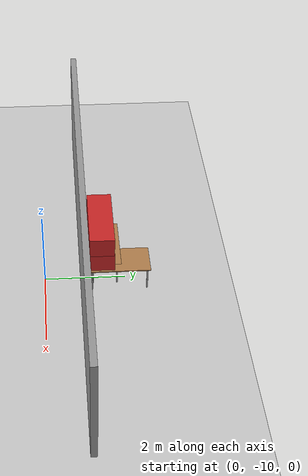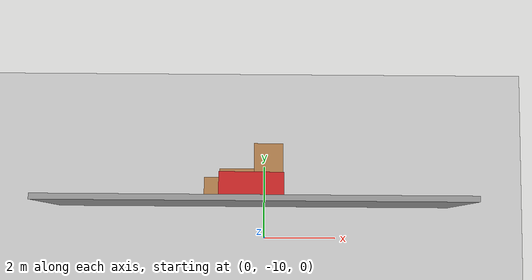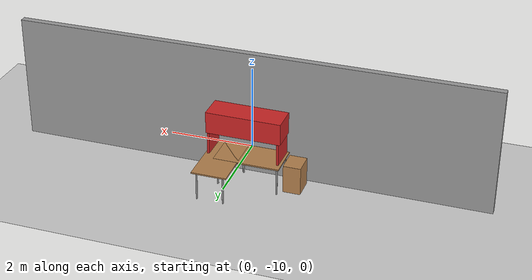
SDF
<sdf version="1.6">
 <world name="default">
  <model name="ground_plane">
   <static>1</static>
   <link name="link">
    <collision name="collision">
     <geometry><plane><normal>0 0 1</normal><size>100 100</size></plane></geometry>
     <surface>
      <contact><collide_bitmask>65535</collide_bitmask></contact>
      <friction><ode><mu>100</mu><mu2>50</mu2></ode></friction>
     </surface>
    </collision>
    <visual name="visual">
     <cast_shadows>0</cast_shadows>
     <geometry><plane><normal>0 0 1</normal><size>100 100</size></plane></geometry>
     <material>
      <script><uri>file://media/materials/scripts/gazebo.material</uri><name>Gazebo/Grey</name></script>
     </material>
    </visual>
   </link>
  </model>
  <model name="nrsl">
   <link name="Wall_6">
    <pose>0 -5.94 0 0 -0 0</pose>
    <visual name="Wall_6_Visual">
     <pose>0 0 1.45 0 -0 0</pose>
     <geometry><box><size>10.97 0.15 2.9</size></box></geometry>
     <material>
      <script><uri>file://media/materials/scripts/gazebo.material</uri><name>Gazebo/Grey</name></script>
      <ambient>1 1 1 1</ambient>
     </material>
     <meta><layer>0</layer></meta>
    </visual>
    <collision name="Wall_6_Collision">
     <pose>0 0 1.45 0 -0 0</pose>
     <geometry><box><size>10.97 0.15 2.9</size></box></geometry>
     <surface>
      <friction>
       <ode><mu>1</mu><mu2>1</mu2><fdir1>0 0 0</fdir1><slip1>0</slip1><slip2>0</slip2></ode>
       <torsional>
        <coefficient>1</coefficient>
        <patch_radius>0</patch_radius>
        <surface_radius>0</surface_radius>
        <use_patch_radius>1</use_patch_radius>
        <ode><slip>0</slip></ode>
       </torsional>
      </friction>
      <bounce><restitution_coefficient>0</restitution_coefficient><threshold>1e+06</threshold></bounce>
      <contact>
       <collide_without_contact>0</collide_without_contact>
       <collide_without_contact_bitmask>1</collide_without_contact_bitmask>
       <collide_bitmask>1</collide_bitmask>
       <ode>
        <soft_cfm>0</soft_cfm>
        <soft_erp>0.2</soft_erp>
        <kp>1e+13</kp>
        <kd>1</kd>
        <max_vel>0.01</max_vel>
        <min_depth>0</min_depth>
       </ode>
       <bullet>
        <split_impulse>1</split_impulse>
        <split_impulse_penetration_threshold>-0.01</split_impulse_penetration_threshold>
        <soft_cfm>0</soft_cfm>
        <soft_erp>0.2</soft_erp>
        <kp>1e+13</kp>
        <kd>1</kd>
       </bullet>
      </contact>
     </surface>
    </collision>
   </link>
   <static>1</static>
   <pose>-0.282297 -3.10716 0 0 -0 0</pose>
  </model>
  <model name="table_7">
   <link name="link">
    <visual name="visual1">
     <pose>0 0 0.67 0 -0 0</pose>
     <geometry><box><size>1.5 0.8 0.03</size></box></geometry>
     <material>
      <script><uri>file://media/materials/scripts/gazebo.material</uri><name>Gazebo/Wood</name></script>
     </material>
    </visual>
    <visual name="front_left_leg">
     <pose>0.68 0.3 0.335 0 -0 0</pose>
     <geometry><cylinder><radius>0.02</radius><length>0.67</length></cylinder></geometry>
     <material>
      <script><uri>file://media/materials/scripts/gazebo.material</uri><name>Gazebo/Grey</name></script>
     </material>
    </visual>
    <visual name="front_right_leg">
     <pose>0.68 -0.3 0.335 0 -0 0</pose>
     <geometry><cylinder><radius>0.02</radius><length>0.67</length></cylinder></geometry>
     <material>
      <script><uri>file://media/materials/scripts/gazebo.material</uri><name>Gazebo/Grey</name></script>
     </material>
    </visual>
    <visual name="back_right_leg">
     <pose>-0.68 -0.3 0.335 0 -0 0</pose>
     <geometry><cylinder><radius>0.02</radius><length>0.67</length></cylinder></geometry>
     <material>
      <script><uri>file://media/materials/scripts/gazebo.material</uri><name>Gazebo/Grey</name></script>
     </material>
    </visual>
    <visual name="back_left_leg">
     <pose>-0.68 0.3 0.335 0 -0 0</pose>
     <geometry><cylinder><radius>0.02</radius><length>0.67</length></cylinder></geometry>
     <material>
      <script><uri>file://media/materials/scripts/gazebo.material</uri><name>Gazebo/Grey</name></script>
     </material>
    </visual>
    <collision name="surface">
     <pose>0 0 0.67 0 -0 0</pose>
     <geometry><box><size>1.5 0.8 0.03</size></box></geometry>
     <surface>
      <friction>
       <ode><mu>0.6</mu><mu2>0.6</mu2><fdir1>0 0 0</fdir1><slip1>0</slip1><slip2>0</slip2></ode>
       <torsional>
        <coefficient>1</coefficient>
        <patch_radius>0</patch_radius>
        <surface_radius>0</surface_radius>
        <use_patch_radius>1</use_patch_radius>
        <ode><slip>0</slip></ode>
       </torsional>
      </friction>
      <bounce><restitution_coefficient>0</restitution_coefficient><threshold>1e+06</threshold></bounce>
      <contact>
       <collide_without_contact>0</collide_without_contact>
       <collide_without_contact_bitmask>1</collide_without_contact_bitmask>
       <collide_bitmask>1</collide_bitmask>
       <ode>
        <soft_cfm>0</soft_cfm>
        <soft_erp>0.2</soft_erp>
        <kp>1e+13</kp>
        <kd>1</kd>
        <max_vel>0.01</max_vel>
        <min_depth>0</min_depth>
       </ode>
       <bullet>
        <split_impulse>1</split_impulse>
        <split_impulse_penetration_threshold>-0.01</split_impulse_penetration_threshold>
        <soft_cfm>0</soft_cfm>
        <soft_erp>0.2</soft_erp>
        <kp>1e+13</kp>
        <kd>1</kd>
       </bullet>
      </contact>
     </surface>
    </collision>
    <collision name="front_left_leg">
     <pose>0.68 0.3 0.335 0 -0 0</pose>
     <geometry><cylinder><radius>0.02</radius><length>0.67</length></cylinder></geometry>
     <surface>
      <friction>
       <ode><mu>1</mu><mu2>1</mu2><fdir1>0 0 0</fdir1><slip1>0</slip1><slip2>0</slip2></ode>
       <torsional>
        <coefficient>1</coefficient>
        <patch_radius>0</patch_radius>
        <surface_radius>0</surface_radius>
        <use_patch_radius>1</use_patch_radius>
        <ode><slip>0</slip></ode>
       </torsional>
      </friction>
      <bounce><restitution_coefficient>0</restitution_coefficient><threshold>1e+06</threshold></bounce>
      <contact>
       <collide_without_contact>0</collide_without_contact>
       <collide_without_contact_bitmask>1</collide_without_contact_bitmask>
       <collide_bitmask>1</collide_bitmask>
       <ode>
        <soft_cfm>0</soft_cfm>
        <soft_erp>0.2</soft_erp>
        <kp>1e+13</kp>
        <kd>1</kd>
        <max_vel>0.01</max_vel>
        <min_depth>0</min_depth>
       </ode>
       <bullet>
        <split_impulse>1</split_impulse>
        <split_impulse_penetration_threshold>-0.01</split_impulse_penetration_threshold>
        <soft_cfm>0</soft_cfm>
        <soft_erp>0.2</soft_erp>
        <kp>1e+13</kp>
        <kd>1</kd>
       </bullet>
      </contact>
     </surface>
    </collision>
    <collision name="front_right_leg">
     <pose>0.68 -0.3 0.335 0 -0 0</pose>
     <geometry><cylinder><radius>0.02</radius><length>0.67</length></cylinder></geometry>
     <surface>
      <friction>
       <ode><mu>1</mu><mu2>1</mu2><fdir1>0 0 0</fdir1><slip1>0</slip1><slip2>0</slip2></ode>
       <torsional>
        <coefficient>1</coefficient>
        <patch_radius>0</patch_radius>
        <surface_radius>0</surface_radius>
        <use_patch_radius>1</use_patch_radius>
        <ode><slip>0</slip></ode>
       </torsional>
      </friction>
      <bounce><restitution_coefficient>0</restitution_coefficient><threshold>1e+06</threshold></bounce>
      <contact>
       <collide_without_contact>0</collide_without_contact>
       <collide_without_contact_bitmask>1</collide_without_contact_bitmask>
       <collide_bitmask>1</collide_bitmask>
       <ode>
        <soft_cfm>0</soft_cfm>
        <soft_erp>0.2</soft_erp>
        <kp>1e+13</kp>
        <kd>1</kd>
        <max_vel>0.01</max_vel>
        <min_depth>0</min_depth>
       </ode>
       <bullet>
        <split_impulse>1</split_impulse>
        <split_impulse_penetration_threshold>-0.01</split_impulse_penetration_threshold>
        <soft_cfm>0</soft_cfm>
        <soft_erp>0.2</soft_erp>
        <kp>1e+13</kp>
        <kd>1</kd>
       </bullet>
      </contact>
     </surface>
    </collision>
    <collision name="back_right_leg">
     <pose>-0.68 -0.3 0.335 0 -0 0</pose>
     <geometry><cylinder><radius>0.02</radius><length>0.67</length></cylinder></geometry>
     <surface>
      <friction>
       <ode><mu>1</mu><mu2>1</mu2><fdir1>0 0 0</fdir1><slip1>0</slip1><slip2>0</slip2></ode>
       <torsional>
        <coefficient>1</coefficient>
        <patch_radius>0</patch_radius>
        <surface_radius>0</surface_radius>
        <use_patch_radius>1</use_patch_radius>
        <ode><slip>0</slip></ode>
       </torsional>
      </friction>
      <bounce><restitution_coefficient>0</restitution_coefficient><threshold>1e+06</threshold></bounce>
      <contact>
       <collide_without_contact>0</collide_without_contact>
       <collide_without_contact_bitmask>1</collide_without_contact_bitmask>
       <collide_bitmask>1</collide_bitmask>
       <ode>
        <soft_cfm>0</soft_cfm>
        <soft_erp>0.2</soft_erp>
        <kp>1e+13</kp>
        <kd>1</kd>
        <max_vel>0.01</max_vel>
        <min_depth>0</min_depth>
       </ode>
       <bullet>
        <split_impulse>1</split_impulse>
        <split_impulse_penetration_threshold>-0.01</split_impulse_penetration_threshold>
        <soft_cfm>0</soft_cfm>
        <soft_erp>0.2</soft_erp>
        <kp>1e+13</kp>
        <kd>1</kd>
       </bullet>
      </contact>
     </surface>
    </collision>
    <collision name="back_left_leg">
     <pose>-0.68 0.3 0.335 0 -0 0</pose>
     <geometry><cylinder><radius>0.02</radius><length>0.67</length></cylinder></geometry>
     <surface>
      <friction>
       <ode><mu>1</mu><mu2>1</mu2><fdir1>0 0 0</fdir1><slip1>0</slip1><slip2>0</slip2></ode>
       <torsional>
        <coefficient>1</coefficient>
        <patch_radius>0</patch_radius>
        <surface_radius>0</surface_radius>
        <use_patch_radius>1</use_patch_radius>
        <ode><slip>0</slip></ode>
       </torsional>
      </friction>
      <bounce><restitution_coefficient>0</restitution_coefficient><threshold>1e+06</threshold></bounce>
      <contact>
       <collide_without_contact>0</collide_without_contact>
       <collide_without_contact_bitmask>1</collide_without_contact_bitmask>
       <collide_bitmask>1</collide_bitmask>
       <ode>
        <soft_cfm>0</soft_cfm>
        <soft_erp>0.2</soft_erp>
        <kp>1e+13</kp>
        <kd>1</kd>
        <max_vel>0.01</max_vel>
        <min_depth>0</min_depth>
       </ode>
       <bullet>
        <split_impulse>1</split_impulse>
        <split_impulse_penetration_threshold>-0.01</split_impulse_penetration_threshold>
        <soft_cfm>0</soft_cfm>
        <soft_erp>0.2</soft_erp>
        <kp>1e+13</kp>
        <kd>1</kd>
       </bullet>
      </contact>
     </surface>
    </collision>
   </link>
   <static>1</static>
   <pose>-0.490476 -8.51451 0 0 -0 0</pose>
  </model>
  <model name="table_8">
   <link name="link">
    <pose>0 0 0 0 -0 1.57</pose>
    <visual name="visual1">
     <pose>0 0 0.67 0 -0 0</pose>
     <geometry><box><size>1.5 0.8 0.03</size></box></geometry>
     <material>
      <script><uri>file://media/materials/scripts/gazebo.material</uri><name>Gazebo/Wood</name></script>
     </material>
    </visual>
    <visual name="front_left_leg">
     <pose>0.68 0.3 0.335 0 -0 0</pose>
     <geometry><cylinder><radius>0.02</radius><length>0.67</length></cylinder></geometry>
     <material>
      <script><uri>file://media/materials/scripts/gazebo.material</uri><name>Gazebo/Grey</name></script>
     </material>
    </visual>
    <visual name="front_right_leg">
     <pose>0.68 -0.3 0.335 0 -0 0</pose>
     <geometry><cylinder><radius>0.02</radius><length>0.67</length></cylinder></geometry>
     <material>
      <script><uri>file://media/materials/scripts/gazebo.material</uri><name>Gazebo/Grey</name></script>
     </material>
    </visual>
    <visual name="back_right_leg">
     <pose>-0.68 -0.3 0.335 0 -0 0</pose>
     <geometry><cylinder><radius>0.02</radius><length>0.67</length></cylinder></geometry>
     <material>
      <script><uri>file://media/materials/scripts/gazebo.material</uri><name>Gazebo/Grey</name></script>
     </material>
    </visual>
    <visual name="back_left_leg">
     <pose>-0.68 0.3 0.335 0 -0 0</pose>
     <geometry><cylinder><radius>0.02</radius><length>0.67</length></cylinder></geometry>
     <material>
      <script><uri>file://media/materials/scripts/gazebo.material</uri><name>Gazebo/Grey</name></script>
     </material>
    </visual>
    <collision name="surface">
     <pose>0 0 0.67 0 -0 0</pose>
     <geometry><box><size>1.5 0.8 0.03</size></box></geometry>
     <surface>
      <friction>
       <ode><mu>0.6</mu><mu2>0.6</mu2><fdir1>0 0 0</fdir1><slip1>0</slip1><slip2>0</slip2></ode>
       <torsional>
        <coefficient>1</coefficient>
        <patch_radius>0</patch_radius>
        <surface_radius>0</surface_radius>
        <use_patch_radius>1</use_patch_radius>
        <ode><slip>0</slip></ode>
       </torsional>
      </friction>
      <bounce><restitution_coefficient>0</restitution_coefficient><threshold>1e+06</threshold></bounce>
      <contact>
       <collide_without_contact>0</collide_without_contact>
       <collide_without_contact_bitmask>1</collide_without_contact_bitmask>
       <collide_bitmask>1</collide_bitmask>
       <ode>
        <soft_cfm>0</soft_cfm>
        <soft_erp>0.2</soft_erp>
        <kp>1e+13</kp>
        <kd>1</kd>
        <max_vel>0.01</max_vel>
        <min_depth>0</min_depth>
       </ode>
       <bullet>
        <split_impulse>1</split_impulse>
        <split_impulse_penetration_threshold>-0.01</split_impulse_penetration_threshold>
        <soft_cfm>0</soft_cfm>
        <soft_erp>0.2</soft_erp>
        <kp>1e+13</kp>
        <kd>1</kd>
       </bullet>
      </contact>
     </surface>
    </collision>
    <collision name="front_left_leg">
     <pose>0.68 0.3 0.335 0 -0 0</pose>
     <geometry><cylinder><radius>0.02</radius><length>0.67</length></cylinder></geometry>
     <surface>
      <friction>
       <ode><mu>1</mu><mu2>1</mu2><fdir1>0 0 0</fdir1><slip1>0</slip1><slip2>0</slip2></ode>
       <torsional>
        <coefficient>1</coefficient>
        <patch_radius>0</patch_radius>
        <surface_radius>0</surface_radius>
        <use_patch_radius>1</use_patch_radius>
        <ode><slip>0</slip></ode>
       </torsional>
      </friction>
      <bounce><restitution_coefficient>0</restitution_coefficient><threshold>1e+06</threshold></bounce>
      <contact>
       <collide_without_contact>0</collide_without_contact>
       <collide_without_contact_bitmask>1</collide_without_contact_bitmask>
       <collide_bitmask>1</collide_bitmask>
       <ode>
        <soft_cfm>0</soft_cfm>
        <soft_erp>0.2</soft_erp>
        <kp>1e+13</kp>
        <kd>1</kd>
        <max_vel>0.01</max_vel>
        <min_depth>0</min_depth>
       </ode>
       <bullet>
        <split_impulse>1</split_impulse>
        <split_impulse_penetration_threshold>-0.01</split_impulse_penetration_threshold>
        <soft_cfm>0</soft_cfm>
        <soft_erp>0.2</soft_erp>
        <kp>1e+13</kp>
        <kd>1</kd>
       </bullet>
      </contact>
     </surface>
    </collision>
    <collision name="front_right_leg">
     <pose>0.68 -0.3 0.335 0 -0 0</pose>
     <geometry><cylinder><radius>0.02</radius><length>0.67</length></cylinder></geometry>
     <surface>
      <friction>
       <ode><mu>1</mu><mu2>1</mu2><fdir1>0 0 0</fdir1><slip1>0</slip1><slip2>0</slip2></ode>
       <torsional>
        <coefficient>1</coefficient>
        <patch_radius>0</patch_radius>
        <surface_radius>0</surface_radius>
        <use_patch_radius>1</use_patch_radius>
        <ode><slip>0</slip></ode>
       </torsional>
      </friction>
      <bounce><restitution_coefficient>0</restitution_coefficient><threshold>1e+06</threshold></bounce>
      <contact>
       <collide_without_contact>0</collide_without_contact>
       <collide_without_contact_bitmask>1</collide_without_contact_bitmask>
       <collide_bitmask>1</collide_bitmask>
       <ode>
        <soft_cfm>0</soft_cfm>
        <soft_erp>0.2</soft_erp>
        <kp>1e+13</kp>
        <kd>1</kd>
        <max_vel>0.01</max_vel>
        <min_depth>0</min_depth>
       </ode>
       <bullet>
        <split_impulse>1</split_impulse>
        <split_impulse_penetration_threshold>-0.01</split_impulse_penetration_threshold>
        <soft_cfm>0</soft_cfm>
        <soft_erp>0.2</soft_erp>
        <kp>1e+13</kp>
        <kd>1</kd>
       </bullet>
      </contact>
     </surface>
    </collision>
    <collision name="back_right_leg">
     <pose>-0.68 -0.3 0.335 0 -0 0</pose>
     <geometry><cylinder><radius>0.02</radius><length>0.67</length></cylinder></geometry>
     <surface>
      <friction>
       <ode><mu>1</mu><mu2>1</mu2><fdir1>0 0 0</fdir1><slip1>0</slip1><slip2>0</slip2></ode>
       <torsional>
        <coefficient>1</coefficient>
        <patch_radius>0</patch_radius>
        <surface_radius>0</surface_radius>
        <use_patch_radius>1</use_patch_radius>
        <ode><slip>0</slip></ode>
       </torsional>
      </friction>
      <bounce><restitution_coefficient>0</restitution_coefficient><threshold>1e+06</threshold></bounce>
      <contact>
       <collide_without_contact>0</collide_without_contact>
       <collide_without_contact_bitmask>1</collide_without_contact_bitmask>
       <collide_bitmask>1</collide_bitmask>
       <ode>
        <soft_cfm>0</soft_cfm>
        <soft_erp>0.2</soft_erp>
        <kp>1e+13</kp>
        <kd>1</kd>
        <max_vel>0.01</max_vel>
        <min_depth>0</min_depth>
       </ode>
       <bullet>
        <split_impulse>1</split_impulse>
        <split_impulse_penetration_threshold>-0.01</split_impulse_penetration_threshold>
        <soft_cfm>0</soft_cfm>
        <soft_erp>0.2</soft_erp>
        <kp>1e+13</kp>
        <kd>1</kd>
       </bullet>
      </contact>
     </surface>
    </collision>
    <collision name="back_left_leg">
     <pose>-0.68 0.3 0.335 0 -0 0</pose>
     <geometry><cylinder><radius>0.02</radius><length>0.67</length></cylinder></geometry>
     <surface>
      <friction>
       <ode><mu>1</mu><mu2>1</mu2><fdir1>0 0 0</fdir1><slip1>0</slip1><slip2>0</slip2></ode>
       <torsional>
        <coefficient>1</coefficient>
        <patch_radius>0</patch_radius>
        <surface_radius>0</surface_radius>
        <use_patch_radius>1</use_patch_radius>
        <ode><slip>0</slip></ode>
       </torsional>
      </friction>
      <bounce><restitution_coefficient>0</restitution_coefficient><threshold>1e+06</threshold></bounce>
      <contact>
       <collide_without_contact>0</collide_without_contact>
       <collide_without_contact_bitmask>1</collide_without_contact_bitmask>
       <collide_bitmask>1</collide_bitmask>
       <ode>
        <soft_cfm>0</soft_cfm>
        <soft_erp>0.2</soft_erp>
        <kp>1e+13</kp>
        <kd>1</kd>
        <max_vel>0.01</max_vel>
        <min_depth>0</min_depth>
       </ode>
       <bullet>
        <split_impulse>1</split_impulse>
        <split_impulse_penetration_threshold>-0.01</split_impulse_penetration_threshold>
        <soft_cfm>0</soft_cfm>
        <soft_erp>0.2</soft_erp>
        <kp>1e+13</kp>
        <kd>1</kd>
       </bullet>
      </contact>
     </surface>
    </collision>
   </link>
   <static>1</static>
   <pose>0.104983 -8.16284 0 0 -0 0</pose>
  </model>
  <model name="guizi_0_0_0">
   <link name="link">
    <inertial>
     <mass>1</mass>
     <inertia>
      <ixx>0.166667</ixx>
      <ixy>0</ixy>
      <ixz>0</ixz>
      <iyy>0.166667</iyy>
      <iyz>0</iyz>
      <izz>0.166667</izz>
     </inertia>
    </inertial>
    <visual name="visual">
     <geometry><box><size>0.4 0.5 0.65</size></box></geometry>
     <material>
      <script><name>Gazebo/Wood</name><uri>file://media/materials/scripts/gazebo.material</uri></script>
     </material>
     <pose>0 0 0.325 0 -0 0</pose>
    </visual>
    <collision name="collision">
     <pose>0 0 0.325 0 -0 0</pose>
     <geometry><box><size>0.4 0.5 0.65</size></box></geometry>
     <surface>
      <friction>
       <ode><mu>1</mu><mu2>1</mu2><fdir1>0 0 0</fdir1><slip1>0</slip1><slip2>0</slip2></ode>
       <torsional>
        <coefficient>1</coefficient>
        <patch_radius>0</patch_radius>
        <surface_radius>0</surface_radius>
        <use_patch_radius>1</use_patch_radius>
        <ode><slip>0</slip></ode>
       </torsional>
      </friction>
      <bounce><restitution_coefficient>0</restitution_coefficient><threshold>1e+06</threshold></bounce>
      <contact>
       <collide_without_contact>0</collide_without_contact>
       <collide_without_contact_bitmask>1</collide_without_contact_bitmask>
       <collide_bitmask>1</collide_bitmask>
       <ode>
        <soft_cfm>0</soft_cfm>
        <soft_erp>0.2</soft_erp>
        <kp>1e+13</kp>
        <kd>1</kd>
        <max_vel>0.01</max_vel>
        <min_depth>0</min_depth>
       </ode>
       <bullet>
        <split_impulse>1</split_impulse>
        <split_impulse_penetration_threshold>-0.01</split_impulse_penetration_threshold>
        <soft_cfm>0</soft_cfm>
        <soft_erp>0.2</soft_erp>
        <kp>1e+13</kp>
        <kd>1</kd>
       </bullet>
      </contact>
     </surface>
    </collision>
   </link>
   <static>0</static>
   <pose>-1.46775 -8.60158 -0 0 -0 0</pose>
  </model>
  <model name="guizi2_0">
   <link name="link">
    <inertial>
     <mass>1</mass>
     <inertia>
      <ixx>0.166667</ixx>
      <ixy>0</ixy>
      <ixz>0</ixz>
      <iyy>0.166667</iyy>
      <iyz>0</iyz>
      <izz>0.166667</izz>
     </inertia>
    </inertial>
    <visual name="visual">
     <geometry><box><size>0.05 0.6 0.5</size></box></geometry>
     <material>
      <script><name>Gazebo/Red</name><uri>file://media/materials/scripts/gazebo.material</uri></script>
     </material>
     <pose>0 0 0.93 0 -0 0</pose>
    </visual>
    <collision name="collision">
     <pose>0 0 0.93 0 -0 0</pose>
     <geometry><box><size>0.05 0.6 0.5</size></box></geometry>
     <surface>
      <friction>
       <ode><mu>1</mu><mu2>1</mu2><fdir1>0 0 0</fdir1><slip1>0</slip1><slip2>0</slip2></ode>
       <torsional>
        <coefficient>1</coefficient>
        <patch_radius>0</patch_radius>
        <surface_radius>0</surface_radius>
        <use_patch_radius>1</use_patch_radius>
        <ode><slip>0</slip></ode>
       </torsional>
      </friction>
      <bounce><restitution_coefficient>0</restitution_coefficient><threshold>1e+06</threshold></bounce>
      <contact>
       <collide_without_contact>0</collide_without_contact>
       <collide_without_contact_bitmask>1</collide_without_contact_bitmask>
       <collide_bitmask>1</collide_bitmask>
       <ode>
        <soft_cfm>0</soft_cfm>
        <soft_erp>0.2</soft_erp>
        <kp>1e+13</kp>
        <kd>1</kd>
        <max_vel>0.01</max_vel>
        <min_depth>0</min_depth>
       </ode>
       <bullet>
        <split_impulse>1</split_impulse>
        <split_impulse_penetration_threshold>-0.01</split_impulse_penetration_threshold>
        <soft_cfm>0</soft_cfm>
        <soft_erp>0.2</soft_erp>
        <kp>1e+13</kp>
        <kd>1</kd>
       </bullet>
      </contact>
     </surface>
    </collision>
   </link>
   <static>0</static>
   <pose>0.438655 -8.58627 0.005281 0 -0.009915 -0.008093</pose>
  </model>
  <model name="guizi2_2">
   <link name="link">
    <inertial>
     <mass>1</mass>
     <inertia>
      <ixx>0.166667</ixx>
      <ixy>0</ixy>
      <ixz>0</ixz>
      <iyy>0.166667</iyy>
      <iyz>0</iyz>
      <izz>0.166667</izz>
     </inertia>
    </inertial>
    <visual name="visual">
     <geometry><box><size>0.05 0.6 0.5</size></box></geometry>
     <material>
      <script><name>Gazebo/Red</name><uri>file://media/materials/scripts/gazebo.material</uri></script>
     </material>
     <pose>0 0 0.93 0 -0 0</pose>
    </visual>
    <collision name="collision">
     <pose>0 0 0.93 0 -0 0</pose>
     <geometry><box><size>0.05 0.6 0.5</size></box></geometry>
     <surface>
      <friction>
       <ode><mu>1</mu><mu2>1</mu2><fdir1>0 0 0</fdir1><slip1>0</slip1><slip2>0</slip2></ode>
       <torsional>
        <coefficient>1</coefficient>
        <patch_radius>0</patch_radius>
        <surface_radius>0</surface_radius>
        <use_patch_radius>1</use_patch_radius>
        <ode><slip>0</slip></ode>
       </torsional>
      </friction>
      <bounce><restitution_coefficient>0</restitution_coefficient><threshold>1e+06</threshold></bounce>
      <contact>
       <collide_without_contact>0</collide_without_contact>
       <collide_without_contact_bitmask>1</collide_without_contact_bitmask>
       <collide_bitmask>1</collide_bitmask>
       <ode>
        <soft_cfm>0</soft_cfm>
        <soft_erp>0.2</soft_erp>
        <kp>1e+13</kp>
        <kd>1</kd>
        <max_vel>0.01</max_vel>
        <min_depth>0</min_depth>
       </ode>
       <bullet>
        <split_impulse>1</split_impulse>
        <split_impulse_penetration_threshold>-0.01</split_impulse_penetration_threshold>
        <soft_cfm>0</soft_cfm>
        <soft_erp>0.2</soft_erp>
        <kp>1e+13</kp>
        <kd>1</kd>
       </bullet>
      </contact>
     </surface>
    </collision>
   </link>
   <static>0</static>
   <pose>-1.17077 -8.5856 0.005295 -1e-06 0.010355 -0.020242</pose>
  </model>
  <model name="guizi2_1">
   <link name="link">
    <inertial>
     <mass>1</mass>
     <inertia>
      <ixx>0.166667</ixx>
      <ixy>0</ixy>
      <ixz>0</ixz>
      <iyy>0.166667</iyy>
      <iyz>0</iyz>
      <izz>0.166667</izz>
     </inertia>
    </inertial>
    <visual name="visual">
     <geometry><box><size>1.71 0.6 0.5</size></box></geometry>
     <material>
      <script><name>Gazebo/Red</name><uri>file://media/materials/scripts/gazebo.material</uri></script>
     </material>
     <pose>0 0 1.43 0 -0 0</pose>
    </visual>
    <collision name="collision">
     <pose>0 0 1.43 0 -0 0</pose>
     <geometry><box><size>1.71 0.6 0.5</size></box></geometry>
     <surface>
      <friction>
       <ode><mu>1</mu><mu2>1</mu2><fdir1>0 0 0</fdir1><slip1>0</slip1><slip2>0</slip2></ode>
       <torsional>
        <coefficient>1</coefficient>
        <patch_radius>0</patch_radius>
        <surface_radius>0</surface_radius>
        <use_patch_radius>1</use_patch_radius>
        <ode><slip>0</slip></ode>
       </torsional>
      </friction>
      <bounce><restitution_coefficient>0</restitution_coefficient><threshold>1e+06</threshold></bounce>
      <contact>
       <collide_without_contact>0</collide_without_contact>
       <collide_without_contact_bitmask>1</collide_without_contact_bitmask>
       <collide_bitmask>1</collide_bitmask>
       <ode>
        <soft_cfm>0</soft_cfm>
        <soft_erp>0.2</soft_erp>
        <kp>1e+13</kp>
        <kd>1</kd>
        <max_vel>0.01</max_vel>
        <min_depth>0</min_depth>
       </ode>
       <bullet>
        <split_impulse>1</split_impulse>
        <split_impulse_penetration_threshold>-0.01</split_impulse_penetration_threshold>
        <soft_cfm>0</soft_cfm>
        <soft_erp>0.2</soft_erp>
        <kp>1e+13</kp>
        <kd>1</kd>
       </bullet>
      </contact>
     </surface>
    </collision>
   </link>
   <static>0</static>
   <pose>-0.362621 -8.59677 0.005479 9e-06 2.2e-05 -0.007251</pose>
  </model>
 </world>
</sdf>
